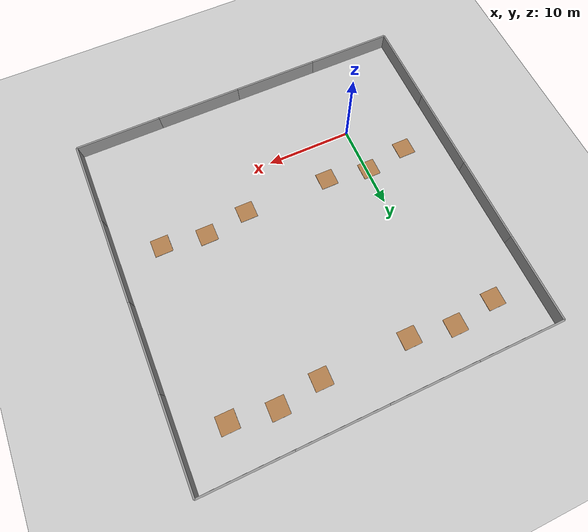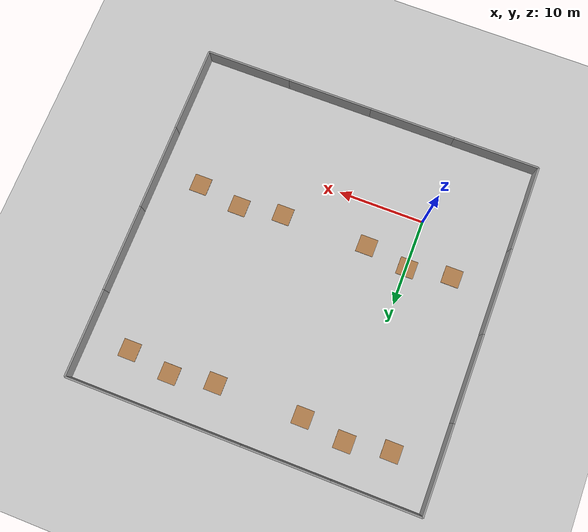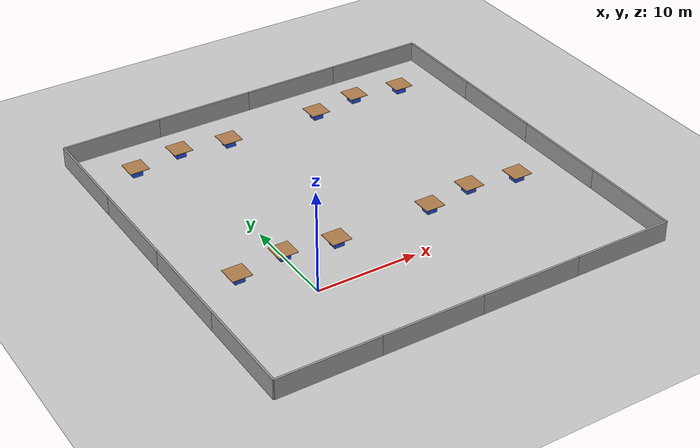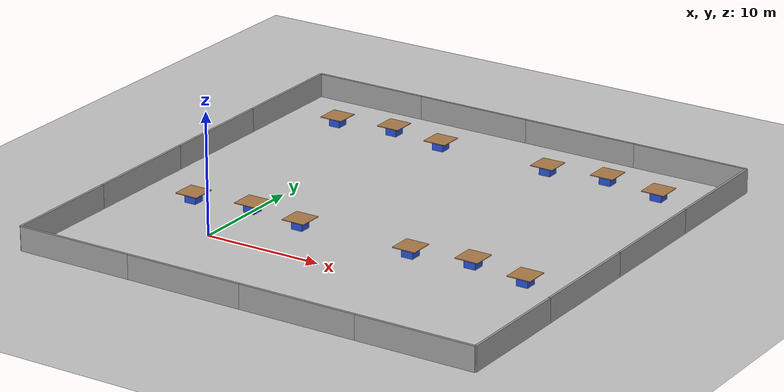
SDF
<sdf version="1.5">
 <world name="default">
  <physics type="ode">
   <max_step_size>0.002</max_step_size>
   <real_time_factor>1</real_time_factor>
   <real_time_update_rate>500</real_time_update_rate>
   <max_contacts>3</max_contacts>
  </physics>
  <scene><shadows>false</shadows></scene>
  <include>
   <uri>model://workdesk</uri>
   <name>ws1_workdesk_1</name>
   <pose>-5.0 5.0 0 0 0 0.0</pose>
   <static>true</static>
  </include>
  <include>
   <uri>model://workdesk</uri>
   <name>ws1_workdesk_2</name>
   <pose>0.0 5.8 0 0 0 0.0</pose>
   <static>true</static>
  </include>
  <include>
   <uri>model://workdesk</uri>
   <name>ws1_workdesk_3</name>
   <pose>5.0 5.0 0 0 0 0.0</pose>
   <static>true</static>
  </include>
  <include>
   <uri>model://workdesk</uri>
   <name>ws2_workdesk_1</name>
   <pose>15.0 5.0 0 0 0 0.0</pose>
   <static>true</static>
  </include>
  <include>
   <uri>model://workdesk</uri>
   <name>ws2_workdesk_2</name>
   <pose>20.0 5.8 0 0 0 0.0</pose>
   <static>true</static>
  </include>
  <include>
   <uri>model://workdesk</uri>
   <name>ws2_workdesk_3</name>
   <pose>25.0 5.0 0 0 0 0.0</pose>
   <static>true</static>
  </include>
  <include>
   <uri>model://workdesk</uri>
   <name>ws3_workdesk_1</name>
   <pose>-5.0 25.0 0 0 0 0.0</pose>
   <static>true</static>
  </include>
  <include>
   <uri>model://workdesk</uri>
   <name>ws3_workdesk_2</name>
   <pose>0.0 25.8 0 0 0 0.0</pose>
   <static>true</static>
  </include>
  <include>
   <uri>model://workdesk</uri>
   <name>ws3_workdesk_3</name>
   <pose>5.0 25.0 0 0 0 0.0</pose>
   <static>true</static>
  </include>
  <include>
   <uri>model://workdesk</uri>
   <name>ws4_workdesk_1</name>
   <pose>15.0 25.0 0 0 0 0.0</pose>
   <static>true</static>
  </include>
  <include>
   <uri>model://workdesk</uri>
   <name>ws4_workdesk_2</name>
   <pose>20.0 25.8 0 0 0 0.0</pose>
   <static>true</static>
  </include>
  <include>
   <uri>model://workdesk</uri>
   <name>ws4_workdesk_3</name>
   <pose>25.0 25.0 0 0 0 0.0</pose>
   <static>true</static>
  </include>
  <include><name>xWall01</name><uri>model://flat_brick_wall</uri><pose>-5 -10 0 0 0 0.0</pose></include>
  <include><name>xWall02</name><uri>model://flat_brick_wall</uri><pose>5 -10 0 0 0 0.0</pose></include>
  <include><name>xWall03</name><uri>model://flat_brick_wall</uri><pose>15 -10 0 0 0 0.0</pose></include>
  <include><name>xWall04</name><uri>model://flat_brick_wall</uri><pose>25 -10 0 0 0 0.0</pose></include>
  <include><name>xWall11</name><uri>model://flat_brick_wall</uri><pose>-5 30 0 0 0 0.0</pose></include>
  <include><name>xWall12</name><uri>model://flat_brick_wall</uri><pose>5 30 0 0 0 0.0</pose></include>
  <include><name>xWall13</name><uri>model://flat_brick_wall</uri><pose>15 30 0 0 0 0.0</pose></include>
  <include><name>xWall14</name><uri>model://flat_brick_wall</uri><pose>25 30 0 0 0 0.0</pose></include>
  <include><name>yWall01</name><uri>model://flat_brick_wall</uri><pose>-10 -5 0 0 0 1.57</pose></include>
  <include><name>yWall02</name><uri>model://flat_brick_wall</uri><pose>-10 5 0 0 0 1.57</pose></include>
  <include><name>yWall03</name><uri>model://flat_brick_wall</uri><pose>-10 15 0 0 0 1.57</pose></include>
  <include><name>yWall04</name><uri>model://flat_brick_wall</uri><pose>-10 25 0 0 0 1.57</pose></include>
  <include><name>yWall11</name><uri>model://flat_brick_wall</uri><pose>30 -5 0 0 0 1.57</pose></include>
  <include><name>yWall12</name><uri>model://flat_brick_wall</uri><pose>30 5 0 0 0 1.57</pose></include>
  <include><name>yWall13</name><uri>model://flat_brick_wall</uri><pose>30 15 0 0 0 1.57</pose></include>
  <include><name>yWall14</name><uri>model://flat_brick_wall</uri><pose>30 25 0 0 0 1.57</pose></include>
  <light name="corridor_light1" type="directional">
   <pose>0 0 10 0 0 0</pose>
   <direction>0 0.18 -1</direction>
   <diffuse>.5 .5 .5 1</diffuse>
   <specular>.5 .5 .5 1</specular>
   <attenuation>
    <range>20</range>
    <linear>0.2</linear>
    <constant>0.8</constant>
    <quadratic>0.01</quadratic>
   </attenuation>
  </light>
  <light name="corridor_light2" type="directional">
   <pose>0 0 10 0 0 0</pose>
   <direction>0 -0.18 -1</direction>
   <diffuse>.5 .5 .5 1</diffuse>
   <specular>.5 .5 .5 1</specular>
   <attenuation>
    <range>20</range>
    <linear>0.2</linear>
    <constant>0.8</constant>
    <quadratic>0.01</quadratic>
   </attenuation>
  </light>
  <include><uri>model://asphalt_ground</uri></include>
 </world>
</sdf>

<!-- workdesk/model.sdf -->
<sdf version="1.6">

<!--
  Information:
  - list of materials: http://wiki.ros.org/simulator_gazebo/Tutorials/ListOfMaterials
-->
  <model name="workdesk">
    <!-- Box -->
    <link name="link">
      <inertial>
        <pose> 0 0 0.4  0 0 0 </pose>
        <mass>60.0</mass>
        <inertia>
          <ixx>2.0</ixx>
          <iyy>2.0</iyy>
          <izz>5.0</izz>
          <ixy>0</ixy>
          <ixz>0</ixz>
          <iyz>0</iyz>
        </inertia>
      </inertial>
      <visual name="visual">
        <pose> 0 0 0.4  0 0 0 </pose>
        <geometry>
          <box>
            <size>1.0 1.0 0.8</size>
          </box>
        </geometry>
        <material>
          <script>
            <uri>file://media/materials/scripts/gazebo.material</uri>
            <name>Gazebo/Blue</name>
          </script>
        </material>
      </visual>
      <collision name="collision">
        <pose> 0 0 0.4  0 0 0 </pose>
        <geometry>
          <box>
            <size>1.0 1.0 0.8</size>
          </box>
        </geometry>
        <mu>1.0</mu>
        <mu2>1.0</mu2>
        <kp>10000000.0</kp>
        <kd>1.0</kd>
        <min_depth>0.001</min_depth>
        <max_vel>0.1</max_vel>
      </collision>
    </link>

    <!-- Wodden plate -->
    <link name="plate">
      <inertial>
        <pose> 0 0 0.83 0 0 0 </pose>
        <mass>5.0</mass>
        <inertia>
          <ixx>0.0</ixx>
          <iyy>0.0</iyy>
          <izz>0.0</izz>
          <ixy>0</ixy>
          <ixz>0</ixz>
          <iyz>0</iyz>
        </inertia>
      </inertial>
      <visual name="visual">
        <pose> 0 0 0.83  0 0 0 </pose>
        <geometry>
          <box>
            <size>2.0 2.0 0.06</size>
          </box>
        </geometry>
        <material>
          <script>
            <uri>file://media/materials/scripts/gazebo.material</uri>
            <name>Gazebo/Wood</name>
          </script>
        </material>
      </visual>
      <collision name="collision">
        <pose> 0 0 0.83  0 0 0 </pose>
        <geometry>
          <box>
            <size>2.0 2.0 0.06</size>
          </box>
        </geometry>
        <mu>1.0</mu>
        <mu2>1.0</mu2>
        <kp>10000000.0</kp>
        <kd>1.0</kd>
        <min_depth>0.001</min_depth>
        <max_vel>0.1</max_vel>
      </collision>
    </link>

    <joint name="plate_joint" type="fixed"> <parent>link</parent> <child>plate</child> </joint>

  </model>
</sdf>

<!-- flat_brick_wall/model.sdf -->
<sdf version="1.5">
  <model name="grey_brick_wall">
    <static>true</static>
    <link name="link">
      <pose>0 0 1.0 0 0 0</pose>
      <collision name="collision">
        <geometry>
          <box>
            <size>10.0 0.2 2.0</size>
          </box>
        </geometry>
      </collision>
      <visual name="visual">
        <cast_shadows>false</cast_shadows>
        <geometry>
          <box>
            <size>10.0 0.2 2.0</size>
          </box>
        </geometry>
        <material>
          <script>
            <uri>model://grey_wall/materials/scripts</uri>
            <uri>model://grey_wall/materials/textures</uri>
            <name>vrc/grey_wall</name>
          </script>
        </material>
      </visual>
    </link>
  </model>
</sdf>

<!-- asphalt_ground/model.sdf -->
<sdf version="1.5">
  <model name="asphalt_ground">
    <static>true</static>
    <link name="link">
      <collision name="collision">
        <geometry>
          <plane>
            <normal>0 0 1</normal>
            <size>200 200</size>
          </plane>
        </geometry>
        <surface>
          <friction>
            <ode>
              <mu>100</mu>
              <mu2>50</mu2>
            </ode>
          </friction>
        </surface>
      </collision>
      <visual name="visual">
        <cast_shadows>false</cast_shadows>
        <geometry>
          <plane>
            <normal>0 0 1</normal>
            <size>200 200</size>
          </plane>
        </geometry>
        <material>
          <script>
            <uri>model://asphalt_ground/materials/scripts</uri>
            <uri>model://asphalt_ground/materials/textures</uri>
            <name>vrc/linoleum_knob</name>
          </script>
        </material>
      </visual>
    </link>
  </model>
</sdf>
